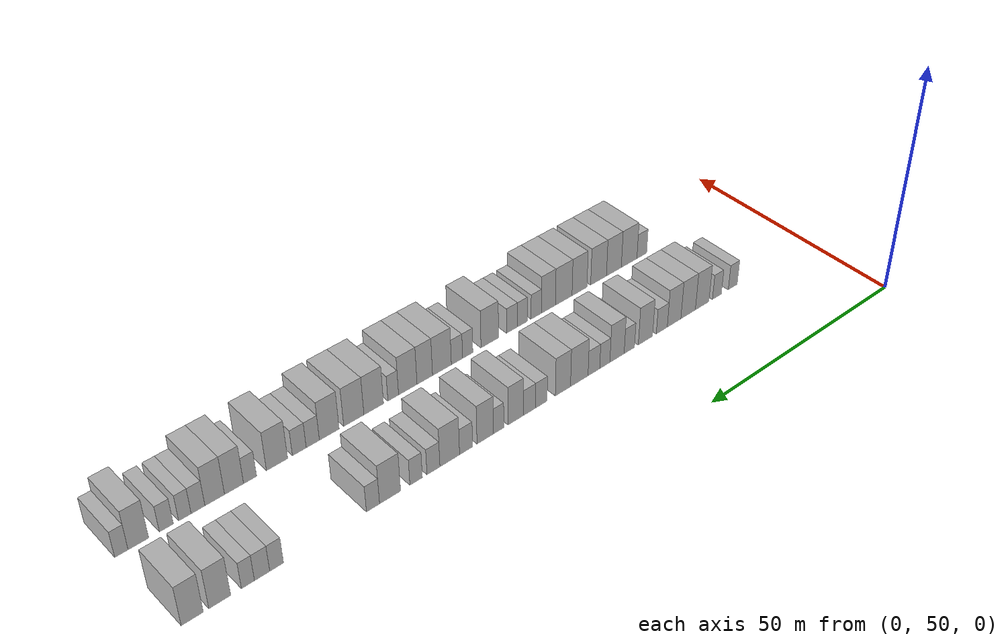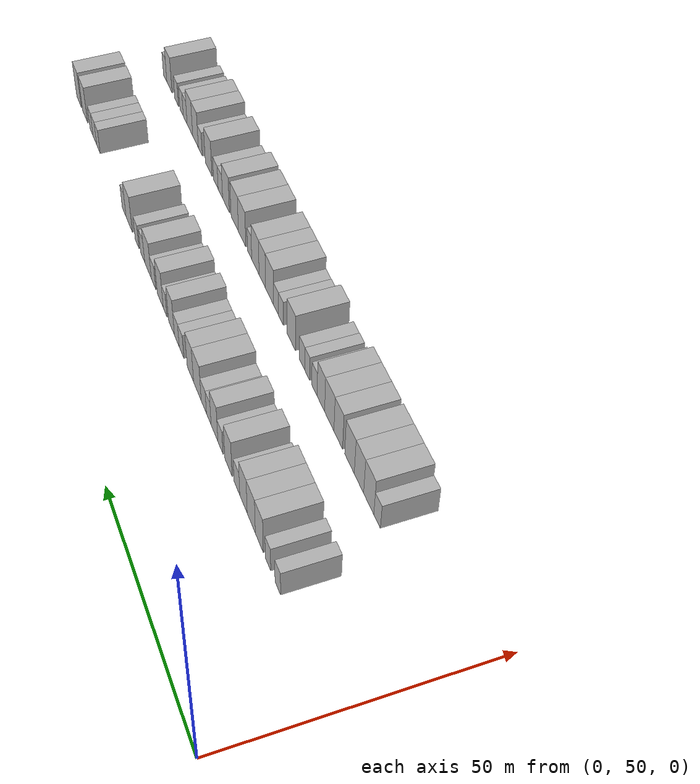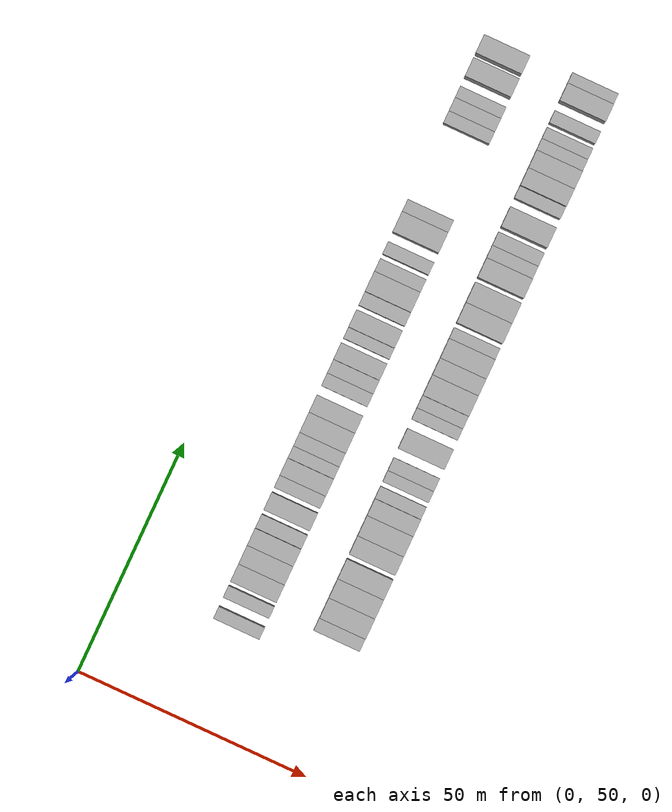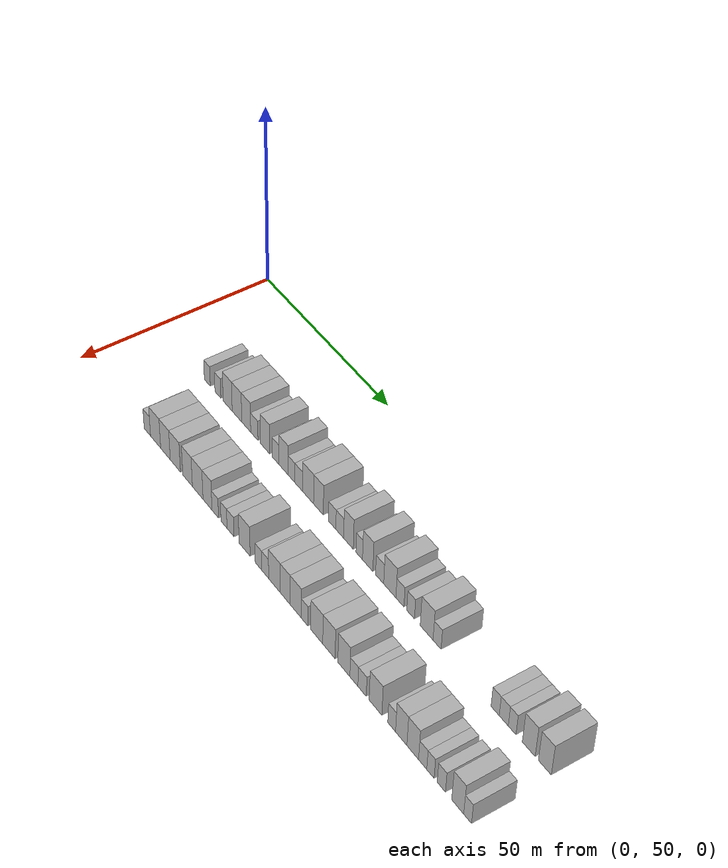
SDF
<sdf version="1.6">
 <world name="default">
  <model name="building_59">
   <static>1</static>
   <pose>25.0000 72.4070 0 0.000000 0.000000 0.000000</pose>
   <link name="link">
    <pose>0 0 3.00 0 0 0</pose>
    <collision name="collision"><geometry><box><size>10.0000 2.5852 6.0000</size></box></geometry></collision>
    <visual name="visual">
     <cast_shadows>0</cast_shadows>
     <geometry><box><size>10.0000 2.5852 6.0000</size></box></geometry>
     <material>
      <script>
       <uri>model://HANNAS_wall/materials/scripts</uri>
       <uri>model://HANNAS_wall/materials/textures</uri>
       <name>vrc/HANNAS_wall</name>
      </script>
     </material>
    </visual>
   </link>
  </model>
  <model name="building_60">
   <static>1</static>
   <pose>25.0000 76.9773 0 0.000000 0.000000 0.000000</pose>
   <link name="link">
    <pose>0 0 3.00 0 0 0</pose>
    <collision name="collision"><geometry><box><size>10.0000 2.5554 6.0000</size></box></geometry></collision>
    <visual name="visual">
     <cast_shadows>0</cast_shadows>
     <geometry><box><size>10.0000 2.5554 6.0000</size></box></geometry>
     <material>
      <script>
       <uri>model://HANNAS_wall/materials/scripts</uri>
       <uri>model://HANNAS_wall/materials/textures</uri>
       <name>vrc/HANNAS_wall</name>
      </script>
     </material>
    </visual>
   </link>
  </model>
  <model name="building_61">
   <static>1</static>
   <pose>25.0000 81.1700 0 0.000000 0.000000 0.000000</pose>
   <link name="link">
    <pose>0 0 4.50 0 0 0</pose>
    <collision name="collision"><geometry><box><size>10.0000 3.8300 9.0000</size></box></geometry></collision>
    <visual name="visual">
     <cast_shadows>0</cast_shadows>
     <geometry><box><size>10.0000 3.8300 9.0000</size></box></geometry>
     <material>
      <script>
       <uri>model://HANNAS_wall/materials/scripts</uri>
       <uri>model://HANNAS_wall/materials/textures</uri>
       <name>vrc/HANNAS_wall</name>
      </script>
     </material>
    </visual>
   </link>
  </model>
  <model name="building_62">
   <static>1</static>
   <pose>25.0000 85.1062 0 0.000000 0.000000 0.000000</pose>
   <link name="link">
    <pose>0 0 4.50 0 0 0</pose>
    <collision name="collision"><geometry><box><size>10.0000 4.0424 9.0000</size></box></geometry></collision>
    <visual name="visual">
     <cast_shadows>0</cast_shadows>
     <geometry><box><size>10.0000 4.0424 9.0000</size></box></geometry>
     <material>
      <script>
       <uri>model://HANNAS_wall/materials/scripts</uri>
       <uri>model://HANNAS_wall/materials/textures</uri>
       <name>vrc/HANNAS_wall</name>
      </script>
     </material>
    </visual>
   </link>
  </model>
  <model name="building_63">
   <static>1</static>
   <pose>25.0000 88.9948 0 0.000000 0.000000 0.000000</pose>
   <link name="link">
    <pose>0 0 4.50 0 0 0</pose>
    <collision name="collision"><geometry><box><size>10.0000 3.7349 9.0000</size></box></geometry></collision>
    <visual name="visual">
     <cast_shadows>0</cast_shadows>
     <geometry><box><size>10.0000 3.7349 9.0000</size></box></geometry>
     <material>
      <script>
       <uri>model://HANNAS_wall/materials/scripts</uri>
       <uri>model://HANNAS_wall/materials/textures</uri>
       <name>vrc/HANNAS_wall</name>
      </script>
     </material>
    </visual>
   </link>
  </model>
  <model name="building_64">
   <static>1</static>
   <pose>25.0000 92.3562 0 0.000000 0.000000 0.000000</pose>
   <link name="link">
    <pose>0 0 3.00 0 0 0</pose>
    <collision name="collision"><geometry><box><size>10.0000 2.9879 6.0000</size></box></geometry></collision>
    <visual name="visual">
     <cast_shadows>0</cast_shadows>
     <geometry><box><size>10.0000 2.9879 6.0000</size></box></geometry>
     <material>
      <script>
       <uri>model://HANNAS_wall/materials/scripts</uri>
       <uri>model://HANNAS_wall/materials/textures</uri>
       <name>vrc/HANNAS_wall</name>
      </script>
     </material>
    </visual>
   </link>
  </model>
  <model name="building_65">
   <static>1</static>
   <pose>25.0000 96.7611 0 0.000000 0.000000 0.000000</pose>
   <link name="link">
    <pose>0 0 4.50 0 0 0</pose>
    <collision name="collision"><geometry><box><size>10.0000 3.8219 9.0000</size></box></geometry></collision>
    <visual name="visual">
     <cast_shadows>0</cast_shadows>
     <geometry><box><size>10.0000 3.8219 9.0000</size></box></geometry>
     <material>
      <script>
       <uri>model://HANNAS_wall/materials/scripts</uri>
       <uri>model://HANNAS_wall/materials/textures</uri>
       <name>vrc/HANNAS_wall</name>
      </script>
     </material>
    </visual>
   </link>
  </model>
  <model name="building_66">
   <static>1</static>
   <pose>25.0000 101.0352 0 0.000000 0.000000 0.000000</pose>
   <link name="link">
    <pose>0 0 3.00 0 0 0</pose>
    <collision name="collision"><geometry><box><size>10.0000 2.7263 6.0000</size></box></geometry></collision>
    <visual name="visual">
     <cast_shadows>0</cast_shadows>
     <geometry><box><size>10.0000 2.7263 6.0000</size></box></geometry>
     <material>
      <script>
       <uri>model://HANNAS_wall/materials/scripts</uri>
       <uri>model://HANNAS_wall/materials/textures</uri>
       <name>vrc/HANNAS_wall</name>
      </script>
     </material>
    </visual>
   </link>
  </model>
  <model name="building_67">
   <static>1</static>
   <pose>25.0000 104.2591 0 0.000000 0.000000 0.000000</pose>
   <link name="link">
    <pose>0 0 4.50 0 0 0</pose>
    <collision name="collision"><geometry><box><size>10.0000 3.7215 9.0000</size></box></geometry></collision>
    <visual name="visual">
     <cast_shadows>0</cast_shadows>
     <geometry><box><size>10.0000 3.7215 9.0000</size></box></geometry>
     <material>
      <script>
       <uri>model://HANNAS_wall/materials/scripts</uri>
       <uri>model://HANNAS_wall/materials/textures</uri>
       <name>vrc/HANNAS_wall</name>
      </script>
     </material>
    </visual>
   </link>
  </model>
  <model name="building_68">
   <static>1</static>
   <pose>25.0000 107.4287 0 0.000000 0.000000 0.000000</pose>
   <link name="link">
    <pose>0 0 3.00 0 0 0</pose>
    <collision name="collision"><geometry><box><size>10.0000 2.6176 6.0000</size></box></geometry></collision>
    <visual name="visual">
     <cast_shadows>0</cast_shadows>
     <geometry><box><size>10.0000 2.6176 6.0000</size></box></geometry>
     <material>
      <script>
       <uri>model://HANNAS_wall/materials/scripts</uri>
       <uri>model://HANNAS_wall/materials/textures</uri>
       <name>vrc/HANNAS_wall</name>
      </script>
     </material>
    </visual>
   </link>
  </model>
  <model name="building_69">
   <static>1</static>
   <pose>25.0000 110.2218 0 0.000000 0.000000 0.000000</pose>
   <link name="link">
    <pose>0 0 3.00 0 0 0</pose>
    <collision name="collision"><geometry><box><size>10.0000 2.9687 6.0000</size></box></geometry></collision>
    <visual name="visual">
     <cast_shadows>0</cast_shadows>
     <geometry><box><size>10.0000 2.9687 6.0000</size></box></geometry>
     <material>
      <script>
       <uri>model://HANNAS_wall/materials/scripts</uri>
       <uri>model://HANNAS_wall/materials/textures</uri>
       <name>vrc/HANNAS_wall</name>
      </script>
     </material>
    </visual>
   </link>
  </model>
  <model name="building_70">
   <static>1</static>
   <pose>25.0000 113.9028 0 0.000000 0.000000 0.000000</pose>
   <link name="link">
    <pose>0 0 4.50 0 0 0</pose>
    <collision name="collision"><geometry><box><size>10.0000 4.3933 9.0000</size></box></geometry></collision>
    <visual name="visual">
     <cast_shadows>0</cast_shadows>
     <geometry><box><size>10.0000 4.3933 9.0000</size></box></geometry>
     <material>
      <script>
       <uri>model://HANNAS_wall/materials/scripts</uri>
       <uri>model://HANNAS_wall/materials/textures</uri>
       <name>vrc/HANNAS_wall</name>
      </script>
     </material>
    </visual>
   </link>
  </model>
  <model name="building_71">
   <static>1</static>
   <pose>25.0000 117.9787 0 0.000000 0.000000 0.000000</pose>
   <link name="link">
    <pose>0 0 4.50 0 0 0</pose>
    <collision name="collision"><geometry><box><size>10.0000 3.7585 9.0000</size></box></geometry></collision>
    <visual name="visual">
     <cast_shadows>0</cast_shadows>
     <geometry><box><size>10.0000 3.7585 9.0000</size></box></geometry>
     <material>
      <script>
       <uri>model://HANNAS_wall/materials/scripts</uri>
       <uri>model://HANNAS_wall/materials/textures</uri>
       <name>vrc/HANNAS_wall</name>
      </script>
     </material>
    </visual>
   </link>
  </model>
  <model name="building_72">
   <static>1</static>
   <pose>25.0000 123.2542 0 0.000000 0.000000 0.000000</pose>
   <link name="link">
    <pose>0 0 3.00 0 0 0</pose>
    <collision name="collision"><geometry><box><size>10.0000 2.7925 6.0000</size></box></geometry></collision>
    <visual name="visual">
     <cast_shadows>0</cast_shadows>
     <geometry><box><size>10.0000 2.7925 6.0000</size></box></geometry>
     <material>
      <script>
       <uri>model://HANNAS_wall/materials/scripts</uri>
       <uri>model://HANNAS_wall/materials/textures</uri>
       <name>vrc/HANNAS_wall</name>
      </script>
     </material>
    </visual>
   </link>
  </model>
  <model name="building_73">
   <static>1</static>
   <pose>25.0000 126.1238 0 0.000000 0.000000 0.000000</pose>
   <link name="link">
    <pose>0 0 3.00 0 0 0</pose>
    <collision name="collision"><geometry><box><size>10.0000 2.9467 6.0000</size></box></geometry></collision>
    <visual name="visual">
     <cast_shadows>0</cast_shadows>
     <geometry><box><size>10.0000 2.9467 6.0000</size></box></geometry>
     <material>
      <script>
       <uri>model://HANNAS_wall/materials/scripts</uri>
       <uri>model://HANNAS_wall/materials/textures</uri>
       <name>vrc/HANNAS_wall</name>
      </script>
     </material>
    </visual>
   </link>
  </model>
  <model name="building_74">
   <static>1</static>
   <pose>25.0000 129.4040 0 0.000000 0.000000 0.000000</pose>
   <link name="link">
    <pose>0 0 4.50 0 0 0</pose>
    <collision name="collision"><geometry><box><size>10.0000 3.6136 9.0000</size></box></geometry></collision>
    <visual name="visual">
     <cast_shadows>0</cast_shadows>
     <geometry><box><size>10.0000 3.6136 9.0000</size></box></geometry>
     <material>
      <script>
       <uri>model://HANNAS_wall/materials/scripts</uri>
       <uri>model://HANNAS_wall/materials/textures</uri>
       <name>vrc/HANNAS_wall</name>
      </script>
     </material>
    </visual>
   </link>
  </model>
  <model name="building_75">
   <static>1</static>
   <pose>25.0000 133.4173 0 0.000000 0.000000 0.000000</pose>
   <link name="link">
    <pose>0 0 3.00 0 0 0</pose>
    <collision name="collision"><geometry><box><size>10.0000 2.4130 6.0000</size></box></geometry></collision>
    <visual name="visual">
     <cast_shadows>0</cast_shadows>
     <geometry><box><size>10.0000 2.4130 6.0000</size></box></geometry>
     <material>
      <script>
       <uri>model://HANNAS_wall/materials/scripts</uri>
       <uri>model://HANNAS_wall/materials/textures</uri>
       <name>vrc/HANNAS_wall</name>
      </script>
     </material>
    </visual>
   </link>
  </model>
  <model name="building_76">
   <static>1</static>
   <pose>25.0000 136.5219 0 0.000000 0.000000 0.000000</pose>
   <link name="link">
    <pose>0 0 4.50 0 0 0</pose>
    <collision name="collision"><geometry><box><size>10.0000 3.7963 9.0000</size></box></geometry></collision>
    <visual name="visual">
     <cast_shadows>0</cast_shadows>
     <geometry><box><size>10.0000 3.7963 9.0000</size></box></geometry>
     <material>
      <script>
       <uri>model://HANNAS_wall/materials/scripts</uri>
       <uri>model://HANNAS_wall/materials/textures</uri>
       <name>vrc/HANNAS_wall</name>
      </script>
     </material>
    </visual>
   </link>
  </model>
  <model name="building_77">
   <static>1</static>
   <pose>25.0000 140.9003 0 0.000000 0.000000 0.000000</pose>
   <link name="link">
    <pose>0 0 3.00 0 0 0</pose>
    <collision name="collision"><geometry><box><size>10.0000 2.9605 6.0000</size></box></geometry></collision>
    <visual name="visual">
     <cast_shadows>0</cast_shadows>
     <geometry><box><size>10.0000 2.9605 6.0000</size></box></geometry>
     <material>
      <script>
       <uri>model://HANNAS_wall/materials/scripts</uri>
       <uri>model://HANNAS_wall/materials/textures</uri>
       <name>vrc/HANNAS_wall</name>
      </script>
     </material>
    </visual>
   </link>
  </model>
  <model name="building_78">
   <static>1</static>
   <pose>25.0000 144.5743 0 0.000000 0.000000 0.000000</pose>
   <link name="link">
    <pose>0 0 4.50 0 0 0</pose>
    <collision name="collision"><geometry><box><size>10.0000 4.3875 9.0000</size></box></geometry></collision>
    <visual name="visual">
     <cast_shadows>0</cast_shadows>
     <geometry><box><size>10.0000 4.3875 9.0000</size></box></geometry>
     <material>
      <script>
       <uri>model://HANNAS_wall/materials/scripts</uri>
       <uri>model://HANNAS_wall/materials/textures</uri>
       <name>vrc/HANNAS_wall</name>
      </script>
     </material>
    </visual>
   </link>
  </model>
  <model name="building_79">
   <static>1</static>
   <pose>25.0000 148.1960 0 0.000000 0.000000 0.000000</pose>
   <link name="link">
    <pose>0 0 3.00 0 0 0</pose>
    <collision name="collision"><geometry><box><size>10.0000 2.8558 6.0000</size></box></geometry></collision>
    <visual name="visual">
     <cast_shadows>0</cast_shadows>
     <geometry><box><size>10.0000 2.8558 6.0000</size></box></geometry>
     <material>
      <script>
       <uri>model://HANNAS_wall/materials/scripts</uri>
       <uri>model://HANNAS_wall/materials/textures</uri>
       <name>vrc/HANNAS_wall</name>
      </script>
     </material>
    </visual>
   </link>
  </model>
  <model name="building_80">
   <static>1</static>
   <pose>25.0000 151.9748 0 0.000000 0.000000 0.000000</pose>
   <link name="link">
    <pose>0 0 3.00 0 0 0</pose>
    <collision name="collision"><geometry><box><size>10.0000 2.7018 6.0000</size></box></geometry></collision>
    <visual name="visual">
     <cast_shadows>0</cast_shadows>
     <geometry><box><size>10.0000 2.7018 6.0000</size></box></geometry>
     <material>
      <script>
       <uri>model://HANNAS_wall/materials/scripts</uri>
       <uri>model://HANNAS_wall/materials/textures</uri>
       <name>vrc/HANNAS_wall</name>
      </script>
     </material>
    </visual>
   </link>
  </model>
  <model name="building_81">
   <static>1</static>
   <pose>25.0000 157.5533 0 0.000000 0.000000 0.000000</pose>
   <link name="link">
    <pose>0 0 4.50 0 0 0</pose>
    <collision name="collision"><geometry><box><size>10.0000 4.4551 9.0000</size></box></geometry></collision>
    <visual name="visual">
     <cast_shadows>0</cast_shadows>
     <geometry><box><size>10.0000 4.4551 9.0000</size></box></geometry>
     <material>
      <script>
       <uri>model://HANNAS_wall/materials/scripts</uri>
       <uri>model://HANNAS_wall/materials/textures</uri>
       <name>vrc/HANNAS_wall</name>
      </script>
     </material>
    </visual>
   </link>
  </model>
  <model name="building_82">
   <static>1</static>
   <pose>25.0000 161.1548 0 0.000000 0.000000 0.000000</pose>
   <link name="link">
    <pose>0 0 3.00 0 0 0</pose>
    <collision name="collision"><geometry><box><size>10.0000 2.7479 6.0000</size></box></geometry></collision>
    <visual name="visual">
     <cast_shadows>0</cast_shadows>
     <geometry><box><size>10.0000 2.7479 6.0000</size></box></geometry>
     <material>
      <script>
       <uri>model://HANNAS_wall/materials/scripts</uri>
       <uri>model://HANNAS_wall/materials/textures</uri>
       <name>vrc/HANNAS_wall</name>
      </script>
     </material>
    </visual>
   </link>
  </model>
  <model name="building_83">
   <static>1</static>
   <pose>25.0000 180.5134 0 0.000000 0.000000 0.000000</pose>
   <link name="link">
    <pose>0 0 3.00 0 0 0</pose>
    <collision name="collision"><geometry><box><size>10.0000 2.6564 6.0000</size></box></geometry></collision>
    <visual name="visual">
     <cast_shadows>0</cast_shadows>
     <geometry><box><size>10.0000 2.6564 6.0000</size></box></geometry>
     <material>
      <script>
       <uri>model://HANNAS_wall/materials/scripts</uri>
       <uri>model://HANNAS_wall/materials/textures</uri>
       <name>vrc/HANNAS_wall</name>
      </script>
     </material>
    </visual>
   </link>
  </model>
  <model name="building_84">
   <static>1</static>
   <pose>25.0000 183.2970 0 0.000000 0.000000 0.000000</pose>
   <link name="link">
    <pose>0 0 3.00 0 0 0</pose>
    <collision name="collision"><geometry><box><size>10.0000 2.9107 6.0000</size></box></geometry></collision>
    <visual name="visual">
     <cast_shadows>0</cast_shadows>
     <geometry><box><size>10.0000 2.9107 6.0000</size></box></geometry>
     <material>
      <script>
       <uri>model://HANNAS_wall/materials/scripts</uri>
       <uri>model://HANNAS_wall/materials/textures</uri>
       <name>vrc/HANNAS_wall</name>
      </script>
     </material>
    </visual>
   </link>
  </model>
  <model name="building_85">
   <static>1</static>
   <pose>25.0000 185.9808 0 0.000000 0.000000 0.000000</pose>
   <link name="link">
    <pose>0 0 3.00 0 0 0</pose>
    <collision name="collision"><geometry><box><size>10.0000 2.4571 6.0000</size></box></geometry></collision>
    <visual name="visual">
     <cast_shadows>0</cast_shadows>
     <geometry><box><size>10.0000 2.4571 6.0000</size></box></geometry>
     <material>
      <script>
       <uri>model://HANNAS_wall/materials/scripts</uri>
       <uri>model://HANNAS_wall/materials/textures</uri>
       <name>vrc/HANNAS_wall</name>
      </script>
     </material>
    </visual>
   </link>
  </model>
  <model name="building_86">
   <static>1</static>
   <pose>25.0000 191.2265 0 0.000000 0.000000 0.000000</pose>
   <link name="link">
    <pose>0 0 4.50 0 0 0</pose>
    <collision name="collision"><geometry><box><size>10.0000 4.0342 9.0000</size></box></geometry></collision>
    <visual name="visual">
     <cast_shadows>0</cast_shadows>
     <geometry><box><size>10.0000 4.0342 9.0000</size></box></geometry>
     <material>
      <script>
       <uri>model://HANNAS_wall/materials/scripts</uri>
       <uri>model://HANNAS_wall/materials/textures</uri>
       <name>vrc/HANNAS_wall</name>
      </script>
     </material>
    </visual>
   </link>
  </model>
  <model name="building_87">
   <static>1</static>
   <pose>25.0000 196.2425 0 0.000000 0.000000 0.000000</pose>
   <link name="link">
    <pose>0 0 4.50 0 0 0</pose>
    <collision name="collision"><geometry><box><size>10.0000 3.9979 9.0000</size></box></geometry></collision>
    <visual name="visual">
     <cast_shadows>0</cast_shadows>
     <geometry><box><size>10.0000 3.9979 9.0000</size></box></geometry>
     <material>
      <script>
       <uri>model://HANNAS_wall/materials/scripts</uri>
       <uri>model://HANNAS_wall/materials/textures</uri>
       <name>vrc/HANNAS_wall</name>
      </script>
     </material>
    </visual>
   </link>
  </model>
  <model name="building_148">
   <static>1</static>
   <pose>44.0000 78.6926 0 0.000000 0.000000 0.000000</pose>
   <link name="link">
    <pose>0 0 3.00 0 0 0</pose>
    <collision name="collision"><geometry><box><size>10.0000 2.7822 6.0000</size></box></geometry></collision>
    <visual name="visual">
     <cast_shadows>0</cast_shadows>
     <geometry><box><size>10.0000 2.7822 6.0000</size></box></geometry>
     <material>
      <script>
       <uri>model://HANNAS_wall/materials/scripts</uri>
       <uri>model://HANNAS_wall/materials/textures</uri>
       <name>vrc/HANNAS_wall</name>
      </script>
     </material>
    </visual>
   </link>
  </model>
  <model name="building_149">
   <static>1</static>
   <pose>44.0000 82.2916 0 0.000000 0.000000 0.000000</pose>
   <link name="link">
    <pose>0 0 4.50 0 0 0</pose>
    <collision name="collision"><geometry><box><size>10.0000 4.4159 9.0000</size></box></geometry></collision>
    <visual name="visual">
     <cast_shadows>0</cast_shadows>
     <geometry><box><size>10.0000 4.4159 9.0000</size></box></geometry>
     <material>
      <script>
       <uri>model://HANNAS_wall/materials/scripts</uri>
       <uri>model://HANNAS_wall/materials/textures</uri>
       <name>vrc/HANNAS_wall</name>
      </script>
     </material>
    </visual>
   </link>
  </model>
  <model name="building_150">
   <static>1</static>
   <pose>44.0000 86.5722 0 0.000000 0.000000 0.000000</pose>
   <link name="link">
    <pose>0 0 4.50 0 0 0</pose>
    <collision name="collision"><geometry><box><size>10.0000 4.1452 9.0000</size></box></geometry></collision>
    <visual name="visual">
     <cast_shadows>0</cast_shadows>
     <geometry><box><size>10.0000 4.1452 9.0000</size></box></geometry>
     <material>
      <script>
       <uri>model://HANNAS_wall/materials/scripts</uri>
       <uri>model://HANNAS_wall/materials/textures</uri>
       <name>vrc/HANNAS_wall</name>
      </script>
     </material>
    </visual>
   </link>
  </model>
  <model name="building_151">
   <static>1</static>
   <pose>44.0000 90.8097 0 0.000000 0.000000 0.000000</pose>
   <link name="link">
    <pose>0 0 4.50 0 0 0</pose>
    <collision name="collision"><geometry><box><size>10.0000 4.3298 9.0000</size></box></geometry></collision>
    <visual name="visual">
     <cast_shadows>0</cast_shadows>
     <geometry><box><size>10.0000 4.3298 9.0000</size></box></geometry>
     <material>
      <script>
       <uri>model://HANNAS_wall/materials/scripts</uri>
       <uri>model://HANNAS_wall/materials/textures</uri>
       <name>vrc/HANNAS_wall</name>
      </script>
     </material>
    </visual>
   </link>
  </model>
  <model name="building_152">
   <static>1</static>
   <pose>44.0000 95.9873 0 0.000000 0.000000 0.000000</pose>
   <link name="link">
    <pose>0 0 4.50 0 0 0</pose>
    <collision name="collision"><geometry><box><size>10.0000 4.0256 9.0000</size></box></geometry></collision>
    <visual name="visual">
     <cast_shadows>0</cast_shadows>
     <geometry><box><size>10.0000 4.0256 9.0000</size></box></geometry>
     <material>
      <script>
       <uri>model://HANNAS_wall/materials/scripts</uri>
       <uri>model://HANNAS_wall/materials/textures</uri>
       <name>vrc/HANNAS_wall</name>
      </script>
     </material>
    </visual>
   </link>
  </model>
  <model name="building_153">
   <static>1</static>
   <pose>44.0000 100.2093 0 0.000000 0.000000 0.000000</pose>
   <link name="link">
    <pose>0 0 4.50 0 0 0</pose>
    <collision name="collision"><geometry><box><size>10.0000 4.4184 9.0000</size></box></geometry></collision>
    <visual name="visual">
     <cast_shadows>0</cast_shadows>
     <geometry><box><size>10.0000 4.4184 9.0000</size></box></geometry>
     <material>
      <script>
       <uri>model://HANNAS_wall/materials/scripts</uri>
       <uri>model://HANNAS_wall/materials/textures</uri>
       <name>vrc/HANNAS_wall</name>
      </script>
     </material>
    </visual>
   </link>
  </model>
  <model name="building_154">
   <static>1</static>
   <pose>44.0000 104.2581 0 0.000000 0.000000 0.000000</pose>
   <link name="link">
    <pose>0 0 4.50 0 0 0</pose>
    <collision name="collision"><geometry><box><size>10.0000 3.6790 9.0000</size></box></geometry></collision>
    <visual name="visual">
     <cast_shadows>0</cast_shadows>
     <geometry><box><size>10.0000 3.6790 9.0000</size></box></geometry>
     <material>
      <script>
       <uri>model://HANNAS_wall/materials/scripts</uri>
       <uri>model://HANNAS_wall/materials/textures</uri>
       <name>vrc/HANNAS_wall</name>
      </script>
     </material>
    </visual>
   </link>
  </model>
  <model name="building_155">
   <static>1</static>
   <pose>44.0000 107.4270 0 0.000000 0.000000 0.000000</pose>
   <link name="link">
    <pose>0 0 3.00 0 0 0</pose>
    <collision name="collision"><geometry><box><size>10.0000 2.6589 6.0000</size></box></geometry></collision>
    <visual name="visual">
     <cast_shadows>0</cast_shadows>
     <geometry><box><size>10.0000 2.6589 6.0000</size></box></geometry>
     <material>
      <script>
       <uri>model://HANNAS_wall/materials/scripts</uri>
       <uri>model://HANNAS_wall/materials/textures</uri>
       <name>vrc/HANNAS_wall</name>
      </script>
     </material>
    </visual>
   </link>
  </model>
  <model name="building_156">
   <static>1</static>
   <pose>44.0000 110.9751 0 0.000000 0.000000 0.000000</pose>
   <link name="link">
    <pose>0 0 3.00 0 0 0</pose>
    <collision name="collision"><geometry><box><size>10.0000 2.4373 6.0000</size></box></geometry></collision>
    <visual name="visual">
     <cast_shadows>0</cast_shadows>
     <geometry><box><size>10.0000 2.4373 6.0000</size></box></geometry>
     <material>
      <script>
       <uri>model://HANNAS_wall/materials/scripts</uri>
       <uri>model://HANNAS_wall/materials/textures</uri>
       <name>vrc/HANNAS_wall</name>
      </script>
     </material>
    </visual>
   </link>
  </model>
  <model name="building_157">
   <static>1</static>
   <pose>44.0000 113.6020 0 0.000000 0.000000 0.000000</pose>
   <link name="link">
    <pose>0 0 3.00 0 0 0</pose>
    <collision name="collision"><geometry><box><size>10.0000 2.8164 6.0000</size></box></geometry></collision>
    <visual name="visual">
     <cast_shadows>0</cast_shadows>
     <geometry><box><size>10.0000 2.8164 6.0000</size></box></geometry>
     <material>
      <script>
       <uri>model://HANNAS_wall/materials/scripts</uri>
       <uri>model://HANNAS_wall/materials/textures</uri>
       <name>vrc/HANNAS_wall</name>
      </script>
     </material>
    </visual>
   </link>
  </model>
  <model name="building_158">
   <static>1</static>
   <pose>44.0000 119.1918 0 0.000000 0.000000 0.000000</pose>
   <link name="link">
    <pose>0 0 4.50 0 0 0</pose>
    <collision name="collision"><geometry><box><size>10.0000 4.3633 9.0000</size></box></geometry></collision>
    <visual name="visual">
     <cast_shadows>0</cast_shadows>
     <geometry><box><size>10.0000 4.3633 9.0000</size></box></geometry>
     <material>
      <script>
       <uri>model://HANNAS_wall/materials/scripts</uri>
       <uri>model://HANNAS_wall/materials/textures</uri>
       <name>vrc/HANNAS_wall</name>
      </script>
     </material>
    </visual>
   </link>
  </model>
  <model name="building_159">
   <static>1</static>
   <pose>44.0000 124.6225 0 0.000000 0.000000 0.000000</pose>
   <link name="link">
    <pose>0 0 3.00 0 0 0</pose>
    <collision name="collision"><geometry><box><size>10.0000 2.4981 6.0000</size></box></geometry></collision>
    <visual name="visual">
     <cast_shadows>0</cast_shadows>
     <geometry><box><size>10.0000 2.4981 6.0000</size></box></geometry>
     <material>
      <script>
       <uri>model://HANNAS_wall/materials/scripts</uri>
       <uri>model://HANNAS_wall/materials/textures</uri>
       <name>vrc/HANNAS_wall</name>
      </script>
     </material>
    </visual>
   </link>
  </model>
  <model name="building_160">
   <static>1</static>
   <pose>44.0000 127.2225 0 0.000000 0.000000 0.000000</pose>
   <link name="link">
    <pose>0 0 3.00 0 0 0</pose>
    <collision name="collision"><geometry><box><size>10.0000 2.7020 6.0000</size></box></geometry></collision>
    <visual name="visual">
     <cast_shadows>0</cast_shadows>
     <geometry><box><size>10.0000 2.7020 6.0000</size></box></geometry>
     <material>
      <script>
       <uri>model://HANNAS_wall/materials/scripts</uri>
       <uri>model://HANNAS_wall/materials/textures</uri>
       <name>vrc/HANNAS_wall</name>
      </script>
     </material>
    </visual>
   </link>
  </model>
  <model name="building_161">
   <static>1</static>
   <pose>44.0000 130.8123 0 0.000000 0.000000 0.000000</pose>
   <link name="link">
    <pose>0 0 4.50 0 0 0</pose>
    <collision name="collision"><geometry><box><size>10.0000 4.4777 9.0000</size></box></geometry></collision>
    <visual name="visual">
     <cast_shadows>0</cast_shadows>
     <geometry><box><size>10.0000 4.4777 9.0000</size></box></geometry>
     <material>
      <script>
       <uri>model://HANNAS_wall/materials/scripts</uri>
       <uri>model://HANNAS_wall/materials/textures</uri>
       <name>vrc/HANNAS_wall</name>
      </script>
     </material>
    </visual>
   </link>
  </model>
  <model name="building_162">
   <static>1</static>
   <pose>44.0000 134.8746 0 0.000000 0.000000 0.000000</pose>
   <link name="link">
    <pose>0 0 4.50 0 0 0</pose>
    <collision name="collision"><geometry><box><size>10.0000 3.6468 9.0000</size></box></geometry></collision>
    <visual name="visual">
     <cast_shadows>0</cast_shadows>
     <geometry><box><size>10.0000 3.6468 9.0000</size></box></geometry>
     <material>
      <script>
       <uri>model://HANNAS_wall/materials/scripts</uri>
       <uri>model://HANNAS_wall/materials/textures</uri>
       <name>vrc/HANNAS_wall</name>
      </script>
     </material>
    </visual>
   </link>
  </model>
  <model name="building_163">
   <static>1</static>
   <pose>44.0000 138.8288 0 0.000000 0.000000 0.000000</pose>
   <link name="link">
    <pose>0 0 4.50 0 0 0</pose>
    <collision name="collision"><geometry><box><size>10.0000 4.2616 9.0000</size></box></geometry></collision>
    <visual name="visual">
     <cast_shadows>0</cast_shadows>
     <geometry><box><size>10.0000 4.2616 9.0000</size></box></geometry>
     <material>
      <script>
       <uri>model://HANNAS_wall/materials/scripts</uri>
       <uri>model://HANNAS_wall/materials/textures</uri>
       <name>vrc/HANNAS_wall</name>
      </script>
     </material>
    </visual>
   </link>
  </model>
  <model name="building_164">
   <static>1</static>
   <pose>44.0000 142.1717 0 0.000000 0.000000 0.000000</pose>
   <link name="link">
    <pose>0 0 3.00 0 0 0</pose>
    <collision name="collision"><geometry><box><size>10.0000 2.4243 6.0000</size></box></geometry></collision>
    <visual name="visual">
     <cast_shadows>0</cast_shadows>
     <geometry><box><size>10.0000 2.4243 6.0000</size></box></geometry>
     <material>
      <script>
       <uri>model://HANNAS_wall/materials/scripts</uri>
       <uri>model://HANNAS_wall/materials/textures</uri>
       <name>vrc/HANNAS_wall</name>
      </script>
     </material>
    </visual>
   </link>
  </model>
  <model name="building_165">
   <static>1</static>
   <pose>44.0000 146.5837 0 0.000000 0.000000 0.000000</pose>
   <link name="link">
    <pose>0 0 4.50 0 0 0</pose>
    <collision name="collision"><geometry><box><size>10.0000 4.3996 9.0000</size></box></geometry></collision>
    <visual name="visual">
     <cast_shadows>0</cast_shadows>
     <geometry><box><size>10.0000 4.3996 9.0000</size></box></geometry>
     <material>
      <script>
       <uri>model://HANNAS_wall/materials/scripts</uri>
       <uri>model://HANNAS_wall/materials/textures</uri>
       <name>vrc/HANNAS_wall</name>
      </script>
     </material>
    </visual>
   </link>
  </model>
  <model name="building_166">
   <static>1</static>
   <pose>44.0000 151.0125 0 0.000000 0.000000 0.000000</pose>
   <link name="link">
    <pose>0 0 4.50 0 0 0</pose>
    <collision name="collision"><geometry><box><size>10.0000 4.4580 9.0000</size></box></geometry></collision>
    <visual name="visual">
     <cast_shadows>0</cast_shadows>
     <geometry><box><size>10.0000 4.4580 9.0000</size></box></geometry>
     <material>
      <script>
       <uri>model://HANNAS_wall/materials/scripts</uri>
       <uri>model://HANNAS_wall/materials/textures</uri>
       <name>vrc/HANNAS_wall</name>
      </script>
     </material>
    </visual>
   </link>
  </model>
  <model name="building_167">
   <static>1</static>
   <pose>44.0000 156.3754 0 0.000000 0.000000 0.000000</pose>
   <link name="link">
    <pose>0 0 4.50 0 0 0</pose>
    <collision name="collision"><geometry><box><size>10.0000 4.2678 9.0000</size></box></geometry></collision>
    <visual name="visual">
     <cast_shadows>0</cast_shadows>
     <geometry><box><size>10.0000 4.2678 9.0000</size></box></geometry>
     <material>
      <script>
       <uri>model://HANNAS_wall/materials/scripts</uri>
       <uri>model://HANNAS_wall/materials/textures</uri>
       <name>vrc/HANNAS_wall</name>
      </script>
     </material>
    </visual>
   </link>
  </model>
  <model name="building_168">
   <static>1</static>
   <pose>44.0000 159.9128 0 0.000000 0.000000 0.000000</pose>
   <link name="link">
    <pose>0 0 3.00 0 0 0</pose>
    <collision name="collision"><geometry><box><size>10.0000 2.8069 6.0000</size></box></geometry></collision>
    <visual name="visual">
     <cast_shadows>0</cast_shadows>
     <geometry><box><size>10.0000 2.8069 6.0000</size></box></geometry>
     <material>
      <script>
       <uri>model://HANNAS_wall/materials/scripts</uri>
       <uri>model://HANNAS_wall/materials/textures</uri>
       <name>vrc/HANNAS_wall</name>
      </script>
     </material>
    </visual>
   </link>
  </model>
  <model name="building_169">
   <static>1</static>
   <pose>44.0000 162.7752 0 0.000000 0.000000 0.000000</pose>
   <link name="link">
    <pose>0 0 3.00 0 0 0</pose>
    <collision name="collision"><geometry><box><size>10.0000 2.9179 6.0000</size></box></geometry></collision>
    <visual name="visual">
     <cast_shadows>0</cast_shadows>
     <geometry><box><size>10.0000 2.9179 6.0000</size></box></geometry>
     <material>
      <script>
       <uri>model://HANNAS_wall/materials/scripts</uri>
       <uri>model://HANNAS_wall/materials/textures</uri>
       <name>vrc/HANNAS_wall</name>
      </script>
     </material>
    </visual>
   </link>
  </model>
  <model name="building_170">
   <static>1</static>
   <pose>44.0000 167.4310 0 0.000000 0.000000 0.000000</pose>
   <link name="link">
    <pose>0 0 4.50 0 0 0</pose>
    <collision name="collision"><geometry><box><size>10.0000 4.3936 9.0000</size></box></geometry></collision>
    <visual name="visual">
     <cast_shadows>0</cast_shadows>
     <geometry><box><size>10.0000 4.3936 9.0000</size></box></geometry>
     <material>
      <script>
       <uri>model://HANNAS_wall/materials/scripts</uri>
       <uri>model://HANNAS_wall/materials/textures</uri>
       <name>vrc/HANNAS_wall</name>
      </script>
     </material>
    </visual>
   </link>
  </model>
  <model name="building_171">
   <static>1</static>
   <pose>44.0000 172.9475 0 0.000000 0.000000 0.000000</pose>
   <link name="link">
    <pose>0 0 3.00 0 0 0</pose>
    <collision name="collision"><geometry><box><size>10.0000 2.6393 6.0000</size></box></geometry></collision>
    <visual name="visual">
     <cast_shadows>0</cast_shadows>
     <geometry><box><size>10.0000 2.6393 6.0000</size></box></geometry>
     <material>
      <script>
       <uri>model://HANNAS_wall/materials/scripts</uri>
       <uri>model://HANNAS_wall/materials/textures</uri>
       <name>vrc/HANNAS_wall</name>
      </script>
     </material>
    </visual>
   </link>
  </model>
  <model name="building_172">
   <static>1</static>
   <pose>44.0000 176.1730 0 0.000000 0.000000 0.000000</pose>
   <link name="link">
    <pose>0 0 4.50 0 0 0</pose>
    <collision name="collision"><geometry><box><size>10.0000 3.8118 9.0000</size></box></geometry></collision>
    <visual name="visual">
     <cast_shadows>0</cast_shadows>
     <geometry><box><size>10.0000 3.8118 9.0000</size></box></geometry>
     <material>
      <script>
       <uri>model://HANNAS_wall/materials/scripts</uri>
       <uri>model://HANNAS_wall/materials/textures</uri>
       <name>vrc/HANNAS_wall</name>
      </script>
     </material>
    </visual>
   </link>
  </model>
  <model name="building_173">
   <static>1</static>
   <pose>44.0000 180.0101 0 0.000000 0.000000 0.000000</pose>
   <link name="link">
    <pose>0 0 4.50 0 0 0</pose>
    <collision name="collision"><geometry><box><size>10.0000 3.8624 9.0000</size></box></geometry></collision>
    <visual name="visual">
     <cast_shadows>0</cast_shadows>
     <geometry><box><size>10.0000 3.8624 9.0000</size></box></geometry>
     <material>
      <script>
       <uri>model://HANNAS_wall/materials/scripts</uri>
       <uri>model://HANNAS_wall/materials/textures</uri>
       <name>vrc/HANNAS_wall</name>
      </script>
     </material>
    </visual>
   </link>
  </model>
  <model name="building_174">
   <static>1</static>
   <pose>44.0000 183.2830 0 0.000000 0.000000 0.000000</pose>
   <link name="link">
    <pose>0 0 3.00 0 0 0</pose>
    <collision name="collision"><geometry><box><size>10.0000 2.6834 6.0000</size></box></geometry></collision>
    <visual name="visual">
     <cast_shadows>0</cast_shadows>
     <geometry><box><size>10.0000 2.6834 6.0000</size></box></geometry>
     <material>
      <script>
       <uri>model://HANNAS_wall/materials/scripts</uri>
       <uri>model://HANNAS_wall/materials/textures</uri>
       <name>vrc/HANNAS_wall</name>
      </script>
     </material>
    </visual>
   </link>
  </model>
  <model name="building_175">
   <static>1</static>
   <pose>44.0000 185.8275 0 0.000000 0.000000 0.000000</pose>
   <link name="link">
    <pose>0 0 3.00 0 0 0</pose>
    <collision name="collision"><geometry><box><size>10.0000 2.4055 6.0000</size></box></geometry></collision>
    <visual name="visual">
     <cast_shadows>0</cast_shadows>
     <geometry><box><size>10.0000 2.4055 6.0000</size></box></geometry>
     <material>
      <script>
       <uri>model://HANNAS_wall/materials/scripts</uri>
       <uri>model://HANNAS_wall/materials/textures</uri>
       <name>vrc/HANNAS_wall</name>
      </script>
     </material>
    </visual>
   </link>
  </model>
  <model name="building_176">
   <static>1</static>
   <pose>44.0000 189.3596 0 0.000000 0.000000 0.000000</pose>
   <link name="link">
    <pose>0 0 3.00 0 0 0</pose>
    <collision name="collision"><geometry><box><size>10.0000 2.6588 6.0000</size></box></geometry></collision>
    <visual name="visual">
     <cast_shadows>0</cast_shadows>
     <geometry><box><size>10.0000 2.6588 6.0000</size></box></geometry>
     <material>
      <script>
       <uri>model://HANNAS_wall/materials/scripts</uri>
       <uri>model://HANNAS_wall/materials/textures</uri>
       <name>vrc/HANNAS_wall</name>
      </script>
     </material>
    </visual>
   </link>
  </model>
  <model name="building_177">
   <static>1</static>
   <pose>44.0000 194.5956 0 0.000000 0.000000 0.000000</pose>
   <link name="link">
    <pose>0 0 4.50 0 0 0</pose>
    <collision name="collision"><geometry><box><size>10.0000 3.8131 9.0000</size></box></geometry></collision>
    <visual name="visual">
     <cast_shadows>0</cast_shadows>
     <geometry><box><size>10.0000 3.8131 9.0000</size></box></geometry>
     <material>
      <script>
       <uri>model://HANNAS_wall/materials/scripts</uri>
       <uri>model://HANNAS_wall/materials/textures</uri>
       <name>vrc/HANNAS_wall</name>
      </script>
     </material>
    </visual>
   </link>
  </model>
  <model name="building_178">
   <static>1</static>
   <pose>44.0000 197.7313 0 0.000000 0.000000 0.000000</pose>
   <link name="link">
    <pose>0 0 3.00 0 0 0</pose>
    <collision name="collision"><geometry><box><size>10.0000 2.4583 6.0000</size></box></geometry></collision>
    <visual name="visual">
     <cast_shadows>0</cast_shadows>
     <geometry><box><size>10.0000 2.4583 6.0000</size></box></geometry>
     <material>
      <script>
       <uri>model://HANNAS_wall/materials/scripts</uri>
       <uri>model://HANNAS_wall/materials/textures</uri>
       <name>vrc/HANNAS_wall</name>
      </script>
     </material>
    </visual>
   </link>
  </model>
 </world>
</sdf>
